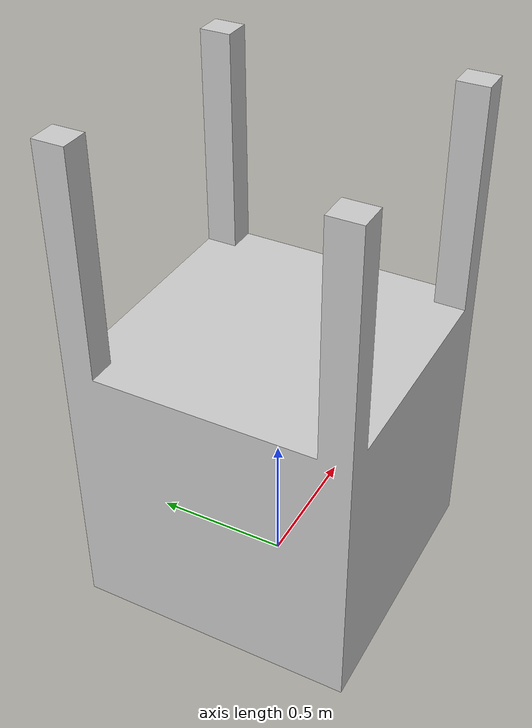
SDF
<?xml version="1.0" ?>
<sdf version="1.6">
  <model name="schaukasten">
    <static>true</static>
    <link name="link">
      <collision name="collision">
        <geometry>
          <mesh>
            <scale>0.5 0.5 0.5</scale>
            <uri>model://schaukasten/meshes/schaukasten.dae</uri>
          </mesh>
        </geometry>
      </collision>
      <visual name="visual">
        <geometry>
          <mesh>
            <scale>0.5 0.5 0.5</scale>
            <uri>model://schaukasten/meshes/schaukasten.dae</uri>
          </mesh>
        </geometry>
      </visual>
    </link>
  </model>
</sdf>
